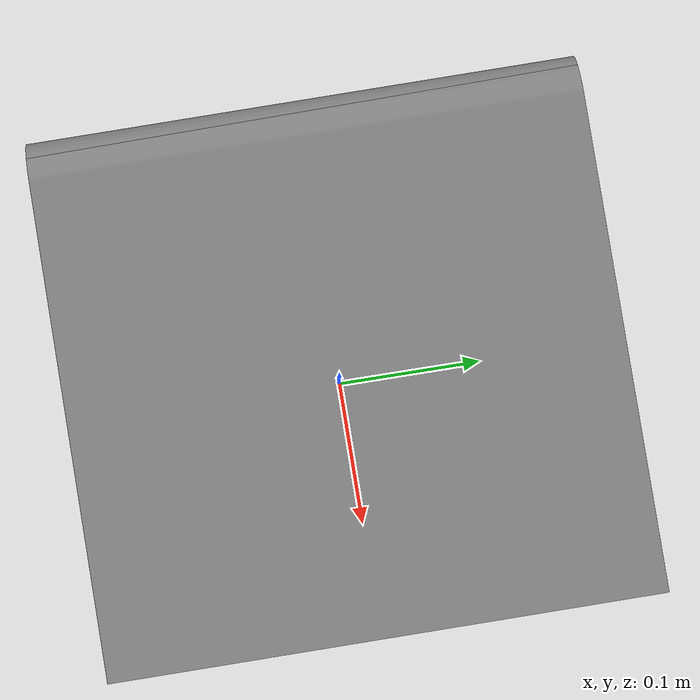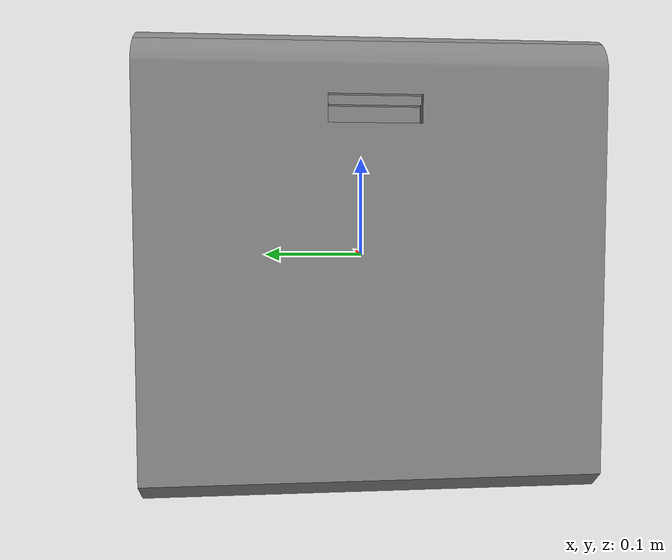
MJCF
<mujoco model="partnet_4e9832bbbb077f9c5c5adfeaec1397f">
    <compiler angle="radian" />
    <option gravity="0 0 0" />
    <size njmax="500" nconmax="100" />
    <asset>
        <mesh name="new-0" file="new-0.stl" scale="0.3 0.3 0.3" />
        <mesh name="new-3" file="new-3.stl" scale="0.3 0.3 0.3" />
        <mesh name="new-2" file="new-2.stl" scale="0.3 0.3 0.3" />
        <mesh name="new-1" file="new-1.stl" scale="0.3 0.3 0.3" />
    </asset>
    <worldbody>
    <body>
        <body name="object">
        <geom quat="0.5 0.5 -0.5 -0.5" type="mesh" mesh="new-0" group="0" conaffinity="0" contype="0" />
        <geom quat="0.5 0.5 -0.5 -0.5" type="mesh" mesh="new-3" group="0" conaffinity="0" contype="0" />
        <body name="link_0" pos="-0.1595511 -0.17983380000000002 -0.16787370000000001" quat="0.5 0.5 -0.5 -0.5">
            <inertial pos="-0.1804563 0.1982862 0.012930119999999998" quat="-0.00910051 0.707181 0.00989488 0.706905" mass="56.3931" diaginertia="13.505 9.07828 4.44272" />
            <joint name="joint_0" pos="0.0 0.0 0.0" axis="1 0 0" limited="true" range="0 1.5708" />
            <geom name="panel" pos="-0.17983380000000002 0.16787370000000001 -0.1595511" type="mesh" mesh="new-2" group="0" />
            <geom pos="-0.17983380000000002 0.16787370000000001 -0.1595511" type="mesh" mesh="new-1" group="0" />
        </body>
    </body>
            <site name="bottom_site" pos="0 0 -0.3" rgba="0 0 0 0" size="0.005" />
            <site name="top_site" pos="0 0 0.3" rgba="0 0 0 0" size="0.005" />
            <site name="horizontal_radius_site" pos="0.3 0 0" rgba="0 0 0 0" size="0.5" />
    </body>
    </worldbody>
</mujoco>
